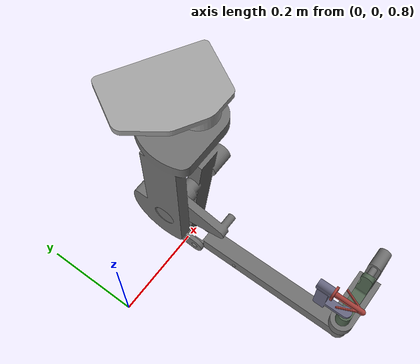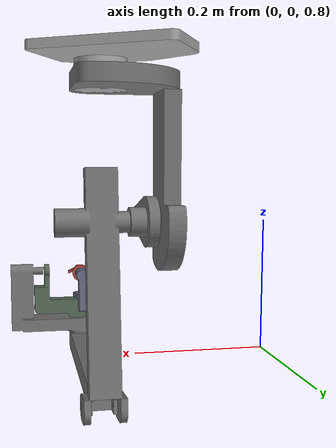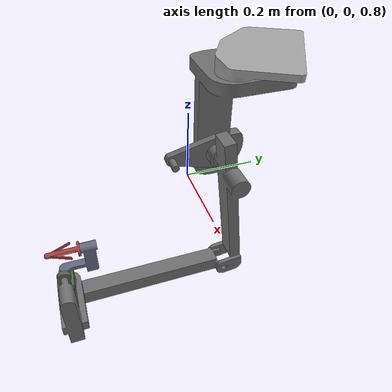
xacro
<?xml version="1.0" ?>
<robot name="master" xmlns:xacro="http://www.ros.org/wiki/xacro">

  <!-- Macros -->
  <xacro:include filename="$(find dvrk_model)/model/mtm.urdf.xacro"/>

  <link name="world"/>
  <xacro:mtm_right
      prefix=""
      parent_link="world"
      xyz="0.25 0.0 1.0" rpy="0.0 0.0 0.0"/>

</robot>

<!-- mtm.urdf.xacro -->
<robot name="mtm" xmlns:xacro="http://www.ros.org/wiki/xacro">
  <!-- Colors -->
  <xacro:include filename="$(find dvrk_model)/model/common.urdf.xacro"/>

  <!-- Macro for the da Vinci Master Console -->
  <xacro:macro name="master_console" params="prefix parent_link xyz rpy">
    <joint name="${prefix}base_fixed_joint" type="fixed">
      <parent link="${parent_link}"/>
      <child link="${prefix}master_base_link"/>
      <origin rpy="${rpy}" xyz="${xyz}"/>
    </joint>

    <link name="${prefix}master_base_link"/>

    <xacro:left_mtm prefix="${prefix}" parent_link="${prefix}master_base_link"/>
    <xacro:right_mtm prefix="${prefix}" parent_link="${prefix}master_base_link"/>
  </xacro:macro>

  <!-- Macros for left and right MTMs -->
  <xacro:macro name="mtm_left" params="prefix parent_link xyz rpy">
    <xacro:mtm
        prefix="${prefix}left_"
        parent_link="${parent_link}"
        xyz="${xyz}" rpy="${rpy}"/>
    <xacro:mtm_platform_left prefix="${prefix}left_"/>
  </xacro:macro>

  <xacro:macro name="mtm_right" params="prefix parent_link xyz rpy">
    <xacro:mtm
      prefix="${prefix}right_"
      parent_link="${parent_link}"
      xyz="${xyz}" rpy="${rpy}"/>
    <xacro:mtm_platform_right prefix="${prefix}right_"/>
  </xacro:macro>

  <!-- Macro for da Vinci Master Tool Manipulator (MTM) -->
  <xacro:macro name="mtm" params="prefix parent_link xyz rpy">

    <!-- Joint 0: Fixed to World-->
    <joint name="${prefix}fixed_joint" type="fixed">
      <parent link="${parent_link}"/>
      <child link="${prefix}top_panel"/>
      <origin rpy="${rpy}" xyz="${xyz}"/>
    </joint>

    <link name="${prefix}top_panel">
      <visual>
        <origin rpy="0 0 0" xyz="0 0 0.19037"/>
        <geometry>
          <mesh filename="package://dvrk_model/meshes/mtm/Top Panel.dae"/>
        </geometry>
      </visual>
      <collision>
        <origin rpy="0 0 0" xyz="0 0 0.19037"/>
        <geometry>
          <mesh filename="package://dvrk_model/meshes/mtm/Top Panel.STL"/>
        </geometry>
      </collision>
      <inertial>
        <origin xyz="0 0 0" rpy="0 0 0"/>
        <mass value=".9"/>
        <inertia ixx="9.0" ixy="0.0" ixz="0.0"
                           iyy="9.0" iyz="0.0"
                                     izz="9.0"/>
      </inertial>
    </link>

    <!-- Joint 1: Outer Yaw -->
    <joint name="${prefix}outer_yaw_joint" type="revolute">
      <parent link="${prefix}top_panel"/>
      <child link="${prefix}outer_yaw_link"/>
      <origin rpy="0 0 ${PI/2}" xyz="0 0 0"/>
      <axis xyz="0 0 1"/>
      <!--rotates about z axis-->
      <!--limit effort and velocity picked arbitrarily check-->
      <limit effort="50.0" lower="${-75/180*PI}" upper="${PI/4}" velocity="2"/>
      <joint_properties damping="1.0" friction="0.0"/>
    </joint>

    <link name="${prefix}outer_yaw_link">
      <visual>
        <origin rpy="0 0 0" xyz="0.025 0 0.19037"/>
        <geometry>
          <mesh filename="package://dvrk_model/meshes/mtm/OutPitch_Shoulder.dae"/>
        </geometry>
      </visual>
      <collision>
        <origin rpy="0 0 0" xyz="0.025 0 0.19037"/>
        <geometry>
          <mesh filename="package://dvrk_model/meshes/mtm/OutPitch_Shoulder.STL"/>
        </geometry>
      </collision>
      <inertial>
        <mass value="1"/>
        <inertia ixx="10.0" ixy="0.0" ixz="0.0" iyy="10.0" iyz="0.0" izz="10.0"/>
      </inertial>
    </link>

    <!-- Joint 2: Shoulder Pitch -->
    <joint name="${prefix}shoulder_pitch_joint" type="revolute">
      <parent link="${prefix}outer_yaw_link"/>
      <child link="${prefix}back_parallel_link"/>  <!-- xyz= 0 0 -.19037-->
      <origin rpy="${-PI/2} ${-PI/2} 0" xyz="0 0 0"/>
      <axis xyz="0 0 1"/>
      <!--limit effort and velocity picked arbitrarily check-->
      <limit effort="100.0" lower="${-PI/4}" upper="${PI/4}" velocity="10"/>
      <joint_properties damping="1.0" friction="0.0"/>
    </joint>

    <link name="${prefix}back_parallel_link">
      <visual>
        <geometry>
          <mesh filename="package://dvrk_model/meshes/mtm/ArmParallel.dae"/>
        </geometry>
      </visual>
      <collision>
        <geometry>
          <mesh filename="package://dvrk_model/meshes/mtm/ArmParallel.STL"/>
        </geometry>
      </collision>
      <inertial>
        <mass value=".9"/>
        <inertia ixx="9.0" ixy="0.0" ixz="0.0" iyy="9.0" iyz="0.0" izz="9.0"/>
      </inertial>
    </link>

    <joint name="${prefix}shoulder_pitch_parallel_joint" type="revolute">
      <parent link="${prefix}outer_yaw_link"/>
      <child link="${prefix}top_parallel_link"/>
      <origin rpy="${-PI/2} ${-PI/2} 0" xyz="0 0 0"/>
      <axis xyz="0 0 1"/>
      <!--rotates about  x axis-->
      <!--limit effort and velocity picked arbitrarily check-->
      <limit effort="100.0" lower="${-PI/2}" upper="${PI/2}" velocity="10"/>
      <joint_properties damping="1.0" friction="0.0"/>
      <mimic joint="${prefix}shoulder_pitch_joint" multiplier="1"/>
    </joint>

    <link name="${prefix}top_parallel_link">
      <visual>
        <origin rpy="0 0 ${-PI/2}" xyz="0 0 0.065"/>
        <geometry>
          <mesh filename="package://dvrk_model/meshes/mtm/ArmParallel1.dae"/>
        </geometry>
      </visual>
      <collision>
        <origin rpy="0 0 0" xyz="0 0 0"/>
        <geometry>
          <mesh filename="package://dvrk_model/meshes/mtm/ArmParallel1.STL"/>
        </geometry>
      </collision>
      <inertial>
        <mass value=".5"/>
        <inertia ixx="5.0" ixy="0.0" ixz="0.0" iyy="5.0" iyz="0.0" izz="5.0"/>
      </inertial>
    </link>

    <!-- Joint 3: Elbow Pitch -->
    <joint name="${prefix}elbow_pitch_joint" type="revolute">
      <parent link="${prefix}back_parallel_link"/>
      <child link="${prefix}bottom_parallel_link"/>  <!-- xyz= -->
      <origin rpy="0 0 ${PI/2}" xyz="-0.2794 0 0"/>
      <axis xyz="0 0 1"/>
      <!--limit effort and velocity picked arbitrarily check-->
      <limit effort="100.0" lower="${-PI/4}" upper="${PI/4}" velocity="10"/>
      <joint_properties damping="1.0" friction="0.0"/>
    </joint>

    <link name="${prefix}bottom_parallel_link">
      <visual>
        <geometry>
          <mesh filename="package://dvrk_model/meshes/mtm/BottomArm.dae"/>
        </geometry>
      </visual>
      <collision>
        <geometry>
          <mesh filename="package://dvrk_model/meshes/mtm/BottomArm.STL"/>
        </geometry>
      </collision>
      <inertial>
        <mass value="0.8"/>
        <inertia ixx="0.1" ixy="0.0" ixz="0.0"
                 iyy="0.1" iyz="0.0"
                 izz="0.1"/>
      </inertial>
    </link>

    <transmission name="tran1">
      <type>transmission_interface/SimpleTransmission</type>
      <joint name="${prefix}outer_yaw_joint"/>
      <actuator name="motor1">
        <hardwareInterface>EffortJointInterface</hardwareInterface>
        <mechanicalReduction>1</mechanicalReduction>
      </actuator>
    </transmission>
    <transmission name="tran2">
      <type>transmission_interface/SimpleTransmission</type>
      <joint name="${prefix}shoulder_pitch_joint"/>
      <actuator name="motor2">
        <hardwareInterface>EffortJointInterface</hardwareInterface>
        <mechanicalReduction>1</mechanicalReduction>
      </actuator>
    </transmission>
    <transmission name="tran3">
      <type>transmission_interface/SimpleTransmission</type>
      <joint name="${prefix}elbow_pitch_joint"/>
      <actuator name="motor3">
        <hardwareInterface>EffortJointInterface</hardwareInterface>
        <mechanicalReduction>1</mechanicalReduction>
      </actuator>
    </transmission>
    <gazebo>
      <plugin name="gazebo_ros_control" filename="libgazebo_ros_control.so">
        <robotNamespace>/mtm</robotNamespace>
      </plugin>
    </gazebo>

    <gazebo>
      <plugin name="force_torque_sensor" filename="libgazebo_ros_f3d.so" >
        <bodyName>${prefix}bottom_parallel_link</bodyName>
        <frameName>${prefix}bottom_parallel_link</frameName>
        <topicName>/force_torque_feedback</topicName>
        <alwaysOn>true</alwaysOn>
        <updateRate>100.0</updateRate>
      </plugin>
    </gazebo>
  </xacro:macro>

  <!-- Macro for dVRK MTM Platform Right -->
  <xacro:macro name="mtm_platform_right" params="prefix">
    <!-- Joint 4: Platform -->
    <joint name="${prefix}wrist_platform_joint" type="revolute">
      <parent link="${prefix}bottom_parallel_link"/>
      <child link="${prefix}wrist_platform_link"/>
      <origin rpy="${PI/2} 0 0" xyz="-0.3645 -0.1506 0.0"/>
      <axis xyz="0 0 1"/>
      <!--rotates about z axis-->
      <!--limit effort and velocity picked arbitrarily check-->
      <limit effort="100.0" lower="${-60/180*PI}" upper="${245/180*PI}" velocity="10"/>
      <joint_properties damping="1.0" friction="0.0"/>
    </joint>

    <link name="${prefix}wrist_platform_link">
      <visual>
        <geometry>
          <mesh filename="package://dvrk_model/meshes/mtm/WristPlatform.dae"/>
        </geometry>
      </visual>
      <collision>
        <geometry>
          <mesh filename="package://dvrk_model/meshes/mtm/WristPlatform.STL"/>
        </geometry>
      </collision>
      <inertial>
        <mass value="0.4"/>
        <inertia ixx="0.1" ixy="0.0" ixz="0.0"
                 iyy="0.1" iyz="0.0"
                 izz="0.1"/>
      </inertial>
    </link>

    <!-- Joint 5: Wrist Pitch -->
    <joint name="${prefix}wrist_pitch_joint" type="revolute">
      <parent link="${prefix}wrist_platform_link"/>
      <child link="${prefix}wrist_pitch_link"/>
      <origin rpy="${-PI/2} 0 0" xyz="0 0 0"/>
      <axis xyz="0 0 1"/>
      <!--limit effort and velocity picked arbitrarily check-->
      <limit effort="100.0" lower="${-PI/2}" upper="${PI}" velocity="10"/>
      <joint_properties damping="1.0" friction="0.0"/>
    </joint>

    <link name="${prefix}wrist_pitch_link">
      <visual>        <!-- defined from CAD file (increased in the y dir by .005-->
        <geometry>
          <mesh filename="package://dvrk_model/meshes/mtm/WristPitch.dae"/>
        </geometry>
      </visual>
      <collision>        <!-- defined from CAD file (increased in the y dir by .005-->
        <geometry>
          <mesh filename="package://dvrk_model/meshes/mtm/WristPitch.STL"/>
        </geometry>
      </collision>
      <inertial>
        <mass value="0.2"/>
        <inertia ixx="0.1" ixy="0.0" ixz="0.0"
                 iyy="0.1" iyz="0.0"
                 izz="0.1"/>
      </inertial>
    </link>

    <!-- Joint 6: Wrist Yaw-->
    <joint name="${prefix}wrist_yaw_joint" type="revolute">
      <parent link="${prefix}wrist_pitch_link"/>
      <child link="${prefix}wrist_yaw_link"/>    <!--  defined from CAD file-->
      <origin rpy="${PI/2} ${-PI/2} 0" xyz="0 0 0"/>
      <axis xyz="0 0 1"/>
      <!--rotates about z axis-->
      <!--limit effort and velocity picked arbitrarily check-->
      <limit effort="100.0"  lower="${-PI/4}" upper="${PI/4}" velocity="10"/>
      <joint_properties damping="1.0" friction="0.0"/>
    </joint>

    <link name="${prefix}wrist_yaw_link">
      <visual>
        <geometry>
          <mesh filename="package://dvrk_model/meshes/mtm/WristYaw.dae"/>
        </geometry>
      </visual>
      <collision>
        <geometry>
          <mesh filename="package://dvrk_model/meshes/mtm/WristYaw.STL"/>
        </geometry>
      </collision>
      <inertial>
        <mass value="0.2"/>
        <inertia ixx="0.1" ixy="0.0" ixz="0.0"
                 iyy="0.1" iyz="0.0"
                 izz="0.1"/>
      </inertial>
    </link>

    <!-- Joint 7: Wrist Roll -->
    <joint name="${prefix}wrist_roll_joint" type="revolute">
      <parent link="${prefix}wrist_yaw_link"/>
      <child link="${prefix}wrist_roll_link"/>  <!-- -.039 & .055 defined from CAD file-->
      <origin rpy="0 ${-PI/2} ${PI/2}" xyz="0 0 0"/>
      <axis xyz="0 0 1"/>
      <!--limit effort and velocity picked arbitrarily check-->
      <limit effort="100.0" lower="${-1.5*PI}" upper="${1.5*PI}" velocity="10"/>
      <joint_properties damping="1.0" friction="0.0"/>
    </joint>

    <link name="${prefix}wrist_roll_link">
      <visual>
        <origin rpy="${PI} 0 0" xyz="0 0 0.039"/>
        <geometry>
          <mesh filename="package://dvrk_model/meshes/mtm/WristRoll.dae"/>
        </geometry>
      </visual>
      <collision>
        <origin rpy="${PI} 0 0" xyz="0 0 0.039"/>
        <geometry>
          <mesh filename="package://dvrk_model/meshes/mtm/WristRoll.STL"/>
        </geometry>
      </collision>
      <inertial>
        <mass value="0.1"/>
        <inertia ixx="0.1" ixy="0.0" ixz="0.0"
                 iyy="0.1" iyz="0.0"
                 izz="0.1"/>
      </inertial>
    </link>

    <transmission name="tran4">
      <type>transmission_interface/SimpleTransmission</type>
      <joint name="${prefix}wrist_platform_joint"/>
      <actuator name="motor4">
        <hardwareInterface>EffortJointInterface</hardwareInterface>
        <mechanicalReduction>1</mechanicalReduction>
      </actuator>
    </transmission>
    <transmission name="tran5">
      <type>transmission_interface/SimpleTransmission</type>
      <joint name="${prefix}wrist_pitch_joint"/>
      <actuator name="motor5">
        <hardwareInterface>EffortJointInterface</hardwareInterface>
        <mechanicalReduction>1</mechanicalReduction>
      </actuator>
    </transmission>
    <transmission name="tran6">
      <type>transmission_interface/SimpleTransmission</type>
      <joint name="${prefix}wrist_yaw_joint"/>
      <actuator name="motor6">
        <hardwareInterface>EffortJointInterface</hardwareInterface>
        <mechanicalReduction>1</mechanicalReduction>
      </actuator>
    </transmission>
    <transmission name="tran7">
      <type>transmission_interface/SimpleTransmission</type>
      <joint name="${prefix}wrist_roll_joint"/>
      <actuator name="motor7">
        <hardwareInterface>EffortJointInterface</hardwareInterface>
        <mechanicalReduction>1</mechanicalReduction>
      </actuator>
    </transmission>

  </xacro:macro>

  <!-- Macro for dVRK MTM Platform Left -->
  <xacro:macro name="mtm_platform_left" params="prefix">
    <!-- Joint 4: Platform -->
    <joint name="${prefix}wrist_platform_joint" type="revolute">
      <parent link="${prefix}bottom_parallel_link"/>
      <child link="${prefix}wrist_platform_link"/>
      <origin rpy="${PI/2} 0 0" xyz="-0.3645 -0.1506 0.0"/>
      <axis xyz="0 0 1"/>
      <!--rotates about z axis-->
      <!--limit effort and velocity picked arbitrarily check-->
      <limit effort="100.0" lower="${-60/180*PI}" upper="${245/180*PI}" velocity="10"/>
      <joint_properties damping="1.0" friction="0.0"/>
    </joint>

    <link name="${prefix}wrist_platform_link">
      <visual>
        <origin rpy="0 0 ${PI}" xyz="0.0 0.0 0.0"/>
        <geometry>
          <mesh filename="package://dvrk_model/meshes/mtm/WristPlatform.dae"/>
        </geometry>
      </visual>
      <collision>
        <origin rpy="0 0 ${PI}" xyz="0.0 0.0 0.0"/>
        <geometry>
          <mesh filename="package://dvrk_model/meshes/mtm/WristPlatform.STL"/>
        </geometry>
      </collision>
      <inertial>
        <mass value="0.4"/>
        <inertia ixx="0.1" ixy="0.0" ixz="0.0"
                 iyy="0.1" iyz="0.0"
                 izz="0.1"/>
      </inertial>
    </link>

    <!-- Joint 5: Wrist Pitch -->
    <joint name="${prefix}wrist_pitch_joint" type="revolute">
      <parent link="${prefix}wrist_platform_link"/>
      <child link="${prefix}wrist_pitch_link"/>
      <origin rpy="${-PI/2} 0 0" xyz="0 0 0"/>
      <axis xyz="0 0 1"/>
      <!--limit effort and velocity picked arbitrarily check-->
      <limit effort="100.0" lower="${-PI/2}" upper="${PI}" velocity="10"/>
      <joint_properties damping="1.0" friction="0.0"/>
    </joint>

    <link name="${prefix}wrist_pitch_link">
      <visual>        <!-- defined from CAD file (increased in the y dir by .005-->
        <origin rpy="0 ${PI} 0" xyz="0.0 0.0 0.0"/>
        <geometry>
          <mesh filename="package://dvrk_model/meshes/mtm/WristPitch.dae"/>
        </geometry>
      </visual>
      <collision>        <!-- defined from CAD file (increased in the y dir by .005-->
        <origin rpy="0 ${PI} 0" xyz="0.0 0.0 0.0"/>
        <geometry>
          <mesh filename="package://dvrk_model/meshes/mtm/WristPitch.STL"/>
        </geometry>
      </collision>
      <inertial>
        <mass value="0.2"/>
        <inertia ixx="0.1" ixy="0.0" ixz="0.0"
                 iyy="0.1" iyz="0.0"
                 izz="0.1"/>
      </inertial>
    </link>

    <!-- Joint 6: Wrist Yaw-->
    <joint name="${prefix}wrist_yaw_joint" type="revolute">
      <parent link="${prefix}wrist_pitch_link"/>
      <child link="${prefix}wrist_yaw_link"/>    <!--  defined from CAD file-->
      <origin rpy="${PI/2} ${-PI/2} 0" xyz="0 0 0"/>
      <axis xyz="0 0 1"/>
      <!--rotates about z axis-->
      <!--limit effort and velocity picked arbitrarily check-->
      <limit effort="100.0"  lower="${-PI/4}" upper="${PI/4}" velocity="10"/>
      <joint_properties damping="1.0" friction="0.0"/>
    </joint>

    <link name="${prefix}wrist_yaw_link">
      <visual>
        <geometry>
          <mesh filename="package://dvrk_model/meshes/mtm/WristYaw.dae"/>
        </geometry>
      </visual>
      <collision>
        <geometry>
          <mesh filename="package://dvrk_model/meshes/mtm/WristYaw.STL"/>
        </geometry>
      </collision>
      <inertial>
        <mass value="0.2"/>
        <inertia ixx="0.1" ixy="0.0" ixz="0.0"
                 iyy="0.1" iyz="0.0"
                 izz="0.1"/>
      </inertial>
    </link>

    <!-- Joint 7: Wrist Roll -->
    <joint name="${prefix}wrist_roll_joint" type="revolute">
      <parent link="${prefix}wrist_yaw_link"/>
      <child link="${prefix}wrist_roll_link"/>  <!-- -.039 & .055 defined from CAD file-->
      <origin rpy="0 ${-PI/2} ${PI/2}" xyz="0 0 0"/>
      <axis xyz="0 0 1"/>
      <!--limit effort and velocity picked arbitrarily check-->
      <limit effort="100.0" lower="${-1.5*PI}" upper="${1.5*PI}" velocity="10"/>
      <joint_properties damping="1.0" friction="0.0"/>
    </joint>

    <link name="${prefix}wrist_roll_link">
      <visual>
        <origin rpy="${PI} 0 0" xyz="0 0 0.039"/>
        <geometry>
          <mesh filename="package://dvrk_model/meshes/mtm/WristRoll.dae"/>
        </geometry>
      </visual>
      <collision>
        <origin rpy="${PI} 0 0" xyz="0 0 0.039"/>
        <geometry>
          <mesh filename="package://dvrk_model/meshes/mtm/WristRoll.STL"/>
        </geometry>
      </collision>
      <inertial>
        <mass value="0.1"/>
        <inertia ixx="0.1" ixy="0.0" ixz="0.0"
                 iyy="0.1" iyz="0.0"
                 izz="0.1"/>
      </inertial>
    </link>

    <transmission name="tran4">
      <type>transmission_interface/SimpleTransmission</type>
      <joint name="${prefix}wrist_platform_joint"/>
      <actuator name="motor4">
        <hardwareInterface>EffortJointInterface</hardwareInterface>
        <mechanicalReduction>1</mechanicalReduction>
      </actuator>
    </transmission>
    <transmission name="tran5">
      <type>transmission_interface/SimpleTransmission</type>
      <joint name="${prefix}wrist_pitch_joint"/>
      <actuator name="motor5">
        <hardwareInterface>EffortJointInterface</hardwareInterface>
        <mechanicalReduction>1</mechanicalReduction>
      </actuator>
    </transmission>
    <transmission name="tran6">
      <type>transmission_interface/SimpleTransmission</type>
      <joint name="${prefix}wrist_yaw_joint"/>
      <actuator name="motor6">
        <hardwareInterface>EffortJointInterface</hardwareInterface>
        <mechanicalReduction>1</mechanicalReduction>
      </actuator>
    </transmission>
    <transmission name="tran7">
      <type>transmission_interface/SimpleTransmission</type>
      <joint name="${prefix}wrist_roll_joint"/>
      <actuator name="motor7">
        <hardwareInterface>EffortJointInterface</hardwareInterface>
        <mechanicalReduction>1</mechanicalReduction>
      </actuator>
    </transmission>

  </xacro:macro>

</robot>

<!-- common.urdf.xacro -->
<robot include-once="true" xmlns:xacro="http://www.ros.org/wiki/xacro">

  <!-- Mathematical Constants -->
  <xacro:property name="PI" value="3.1415926535897931" />

  <!-- Colors -->
  <xacro:property name="DaVinciWhite"     value="1.0 1.0 1.0 1"/>
  <xacro:property name="DaVinciLightGray" value="0.8 0.8 0.8 1"/>
  <xacro:property name="DaVinciMedGray"   value="0.6 0.6 0.6 1"/>
  <xacro:property name="DaVinciDarkGray"  value="0.4 0.4 0.4 1"/>
  <xacro:property name="DaVinciRed"       value="0.5 0.4 0.4 1"/>
  <xacro:property name="DaVinciGreen"     value="0.4 0.5 0.4 1"/>
  <xacro:property name="DaVinciBlue"      value="0.4 0.4 0.5 1"/>

  <material name="DaVinciWhite">    <color rgba="${DaVinciWhite}"/></material>
  <material name="DaVinciLightGray"><color rgba="${DaVinciLightGray}"/></material>
  <material name="DaVinciMedGray">  <color rgba="${DaVinciMedGray}"/></material>
  <material name="DaVinciDarkGray"> <color rgba="${DaVinciDarkGray}"/></material>
  <material name="DaVinciRed">      <color rgba="${DaVinciRed}"/></material>
  <material name="DaVinciGreen">    <color rgba="${DaVinciGreen}"/></material>
  <material name="DaVinciBlue">     <color rgba="${DaVinciBlue}"/></material>
</robot>
